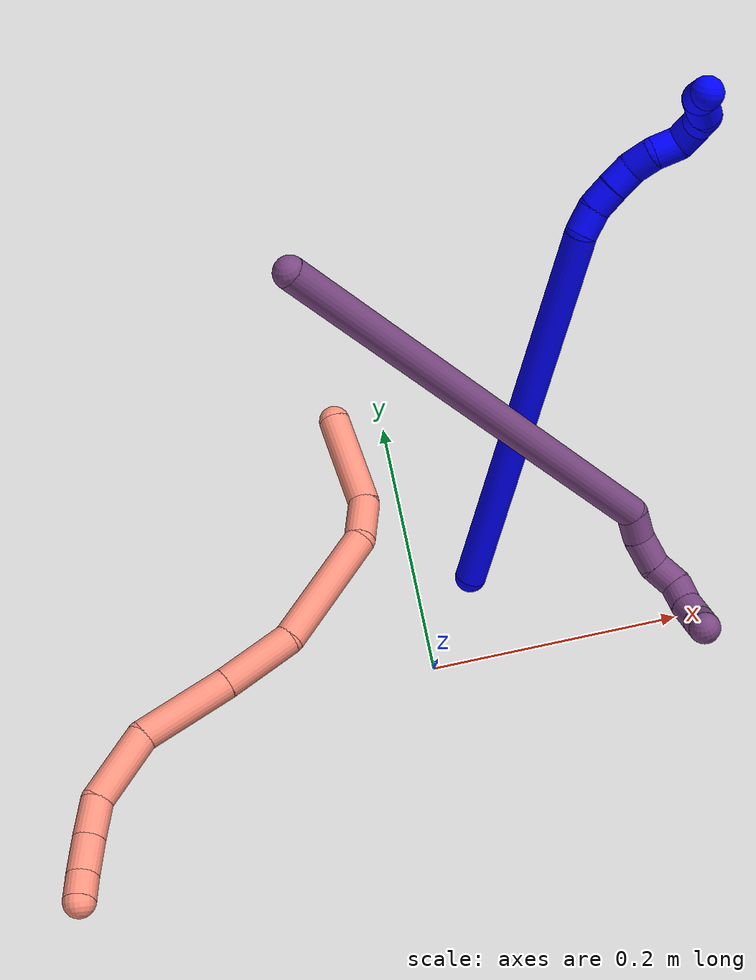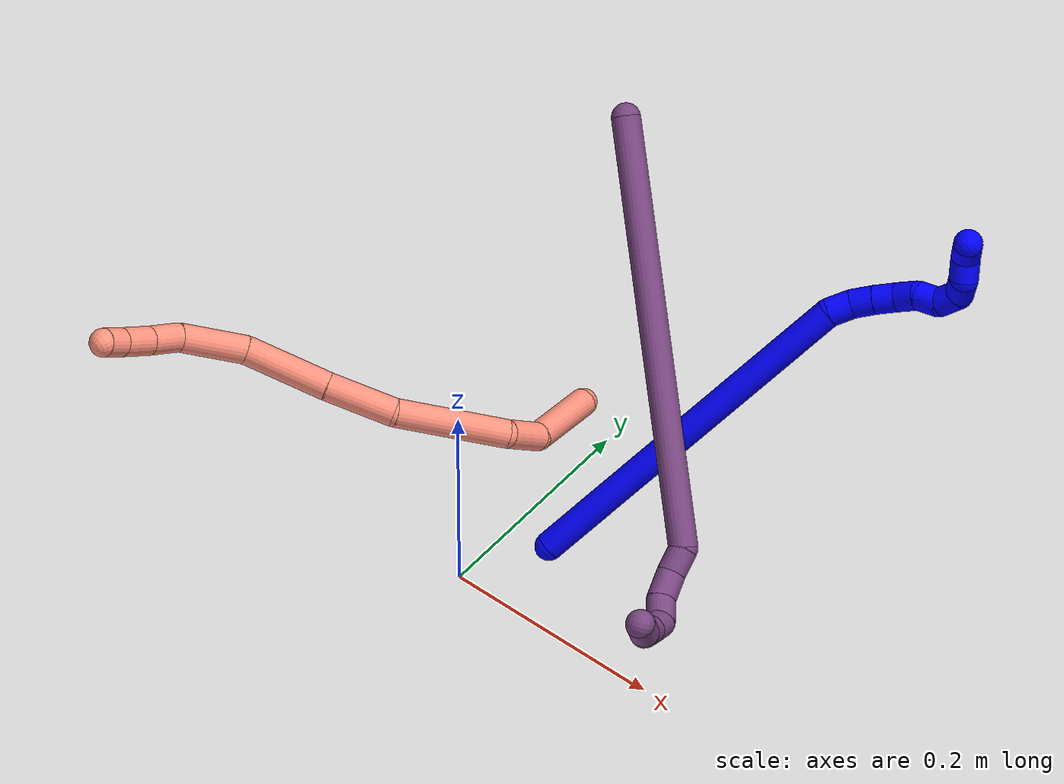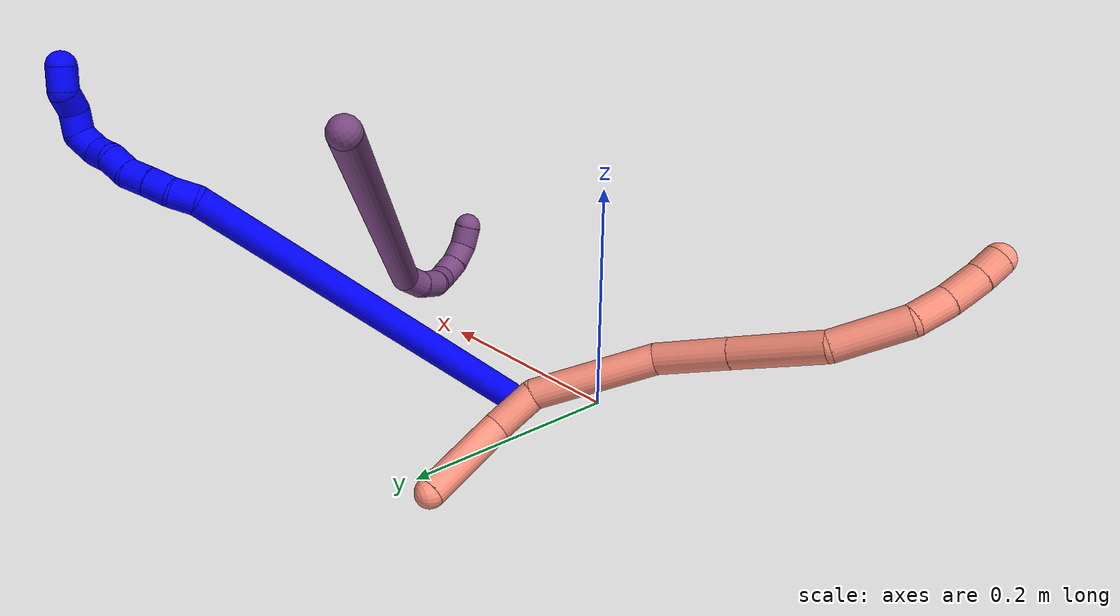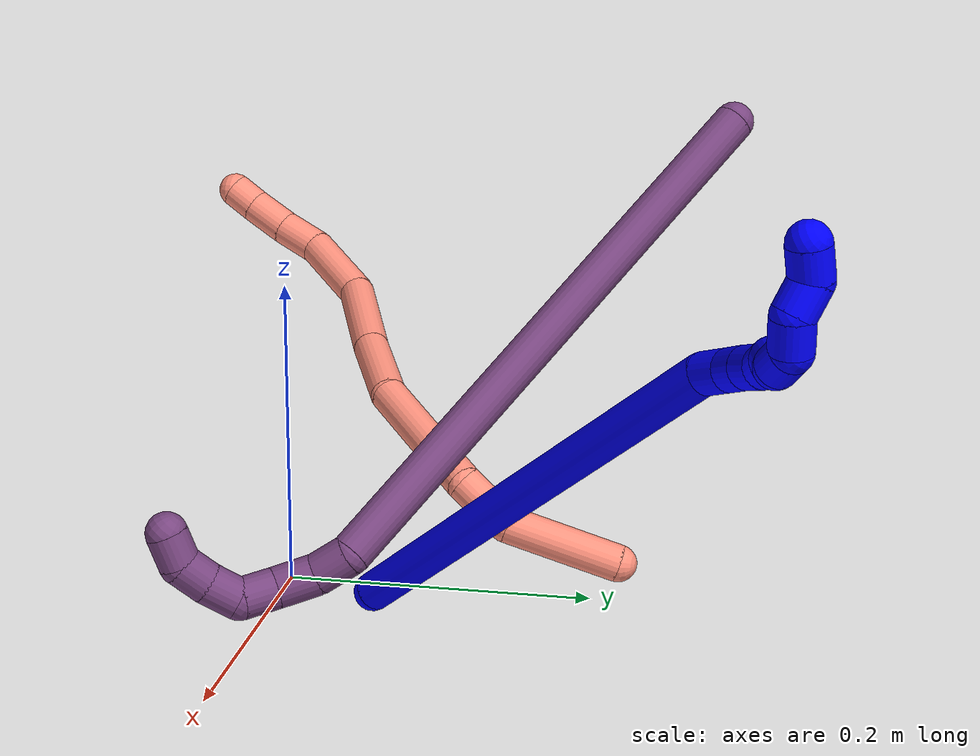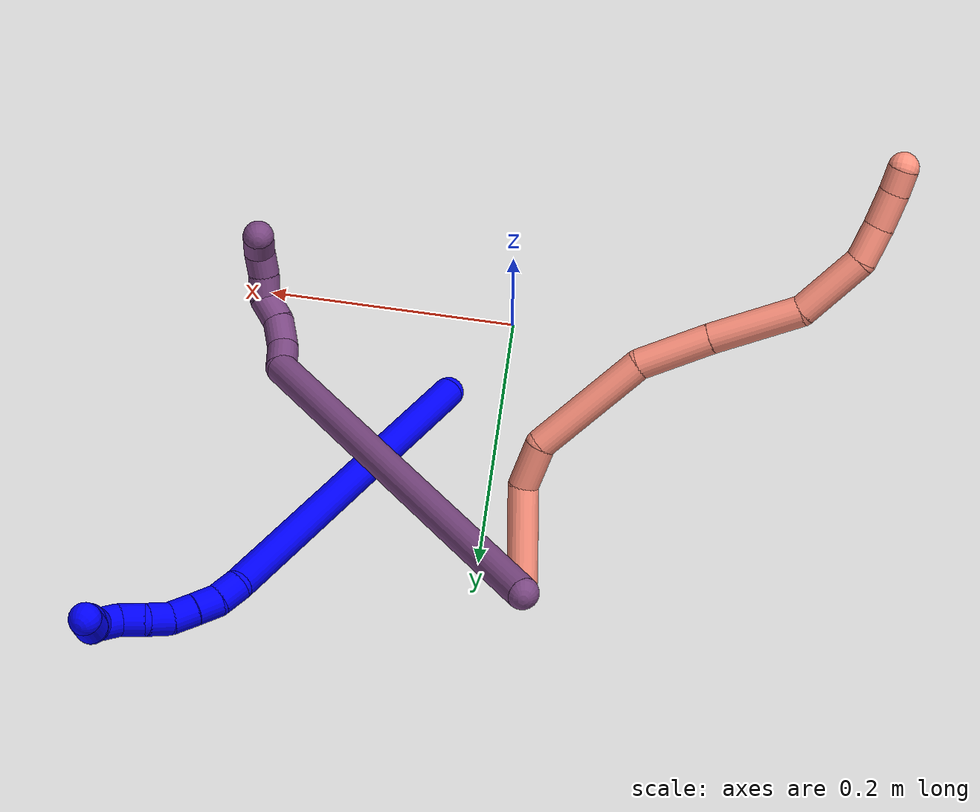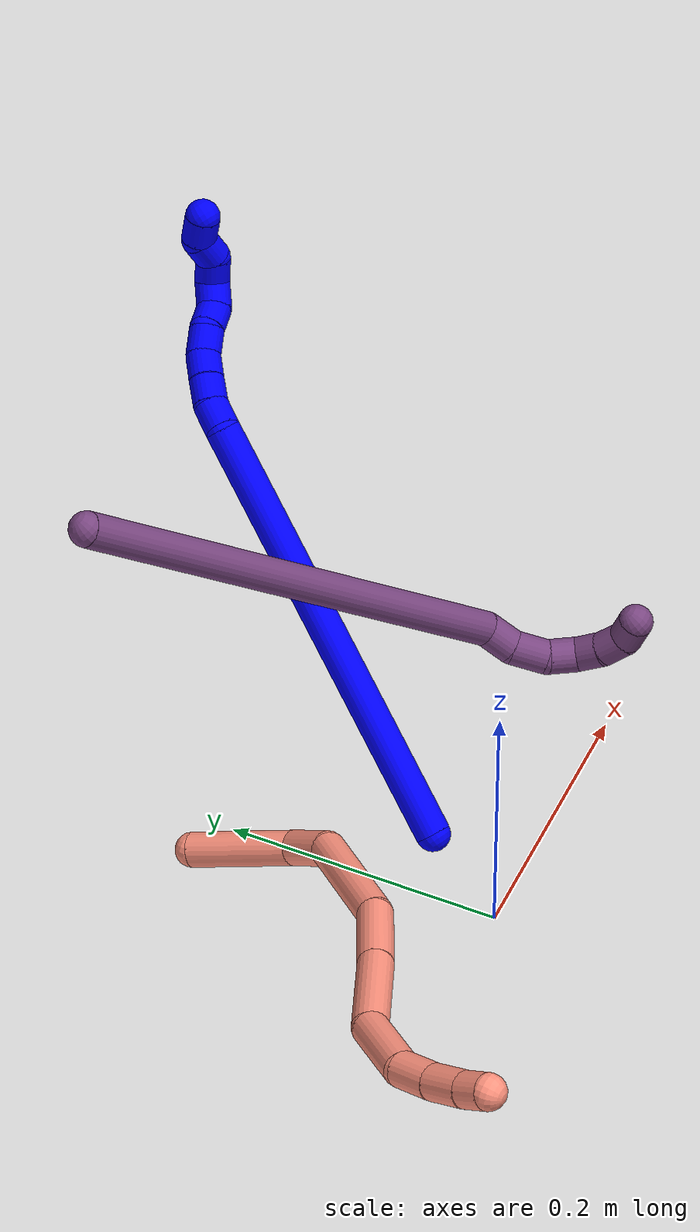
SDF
<sdf version="1.7">
 <world name="default">
  <model name="photoneo_s_sensor">
   <static>1</static>
   <pose>0 0 2 1.57079 1.57079 3.14159</pose>
   <link name="link">
    <inertial><mass>0.1</mass></inertial>
    <sensor name="sensor" type="depth">
     <update_rate>30</update_rate>
     <camera>
      <horizontal_fov>1.22</horizontal_fov>
      <image><width>1920</width><height>1200</height><format>B8G8R8</format></image>
      <clip><near>0.1</near><far>4</far></clip>
      <depth_camera><output>points</output></depth_camera>
     </camera>
     <plugin name="camera_plugin" filename="libgazebo_ros_depth_camera.so">
      <baseline>0.2</baseline>
      <alwaysOn>1</alwaysOn>
      <updateRate>0.0</updateRate>
      <cameraName>camera_ir</cameraName>
      <imageTopicName>/camera/color/image_raw</imageTopicName>
      <cameraInfoTopicName>/camera/color/camera_info</cameraInfoTopicName>
      <depthImageTopicName>/camera/depth/image_raw</depthImageTopicName>
      <depthImageCameraInfoTopicName>/camera/depth/camera_info</depthImageCameraInfoTopicName>
      <pointCloudTopicName>/camera/depth/points</pointCloudTopicName>
      <frameName>fr_optical</frameName>
      <pointCloudCutoff>0.1</pointCloudCutoff>
      <pointCloudCutoffMax>2.0</pointCloudCutoffMax>
      <distortionK1>0</distortionK1>
      <distortionK2>0</distortionK2>
      <distortionK3>0</distortionK3>
      <distortionT1>0</distortionT1>
      <distortionT2>0</distortionT2>
      <CxPrime>0</CxPrime>
      <Cx>0</Cx>
      <Cy>0</Cy>
      <focalLength>0</focalLength>
      <hackBaseline>0</hackBaseline>
     </plugin>
    </sensor>
   </link>
  </model>
  <model name="bin">
   <static>1</static>
   <link name="bottom">
    <collision name="collision-bottom">
     <pose>0 0 -0.01 0 -0 0</pose>
     <geometry><box><size>0.8 0.6 0.02</size></box></geometry>
     <surface>
      <friction><ode><mu>100</mu><mu2>100</mu2></ode></friction>
      <contact><collide_bitmask>65535</collide_bitmask></contact>
     </surface>
    </collision>
   </link>
   <link name="west_wall">
    <collision name="collision-west_wall">
     <pose>-0.41 0 0.1 0 -0 0</pose>
     <geometry><box><size>0.02 0.6 0.2</size></box></geometry>
     <surface>
      <friction><ode><mu>100</mu><mu2>100</mu2></ode></friction>
      <contact><collide_bitmask>65535</collide_bitmask></contact>
     </surface>
    </collision>
   </link>
   <link name="east_wall">
    <collision name="collision-east_wall">
     <pose>0.41 0 0.1 0 -0 0</pose>
     <geometry><box><size>0.02 0.6 0.2</size></box></geometry>
     <surface>
      <friction><ode><mu>100</mu><mu2>100</mu2></ode></friction>
      <contact><collide_bitmask>65535</collide_bitmask></contact>
     </surface>
    </collision>
   </link>
   <link name="south_wall">
    <collision name="collision-south_wall">
     <pose>0 -0.31 0.1 0 -0 0</pose>
     <geometry><box><size>0.8 0.02 0.2</size></box></geometry>
     <surface>
      <friction><ode><mu>100</mu><mu2>100</mu2></ode></friction>
      <contact><collide_bitmask>65535</collide_bitmask></contact>
     </surface>
    </collision>
   </link>
   <link name="north_wall">
    <collision name="collision-north_wall">
     <pose>0 0.31 0.1 0 -0 0</pose>
     <geometry><box><size>0.8 0.02 0.2</size></box></geometry>
     <surface>
      <friction><ode><mu>100</mu><mu2>100</mu2></ode></friction>
      <contact><collide_bitmask>65535</collide_bitmask></contact>
     </surface>
    </collision>
   </link>
  </model>
  <model name="1">
   <static>0</static>
   <link name="1">
    <collision name="collision-cylinder-e_1_1_4">
     <pose>0.011566 -0.008713 0.158798 0.054812 0.072597 0.001991</pose>
     <geometry><cylinder><radius>0.0125</radius><length>0.318913</length></cylinder></geometry>
     <surface>
      <friction><ode><mu>1.16</mu><mu2>1.16</mu2><slip1>0</slip1><slip2>0</slip2></ode></friction>
      <contact><ode><kp>1e+06</kp><kd>1</kd><max_vel>0</max_vel><min_depth>0.001</min_depth></ode></contact>
     </surface>
    </collision>
    <visual name="visual-cylinder-e_1_1_4">
     <pose>0.011566 -0.008713 0.158798 0.054812 0.072597 0.001991</pose>
     <geometry><cylinder><radius>0.0125</radius><length>0.318913</length></cylinder></geometry>
     <material><ambient>0 0 1 1</ambient></material>
    </visual>
    <collision name="collision-cylinder-e_2_4_5">
     <pose>0.027265 -0.016362 0.327233 -0.109955 0.402946 -0.022479</pose>
     <geometry><cylinder><radius>0.0125</radius><length>0.02108</length></cylinder></geometry>
     <surface>
      <friction><ode><mu>1.16</mu><mu2>1.16</mu2><slip1>0</slip1><slip2>0</slip2></ode></friction>
      <contact><ode><kp>1e+06</kp><kd>1</kd><max_vel>0</max_vel><min_depth>0.001</min_depth></ode></contact>
     </surface>
    </collision>
    <visual name="visual-cylinder-e_2_4_5">
     <pose>0.027265 -0.016362 0.327233 -0.109955 0.402946 -0.022479</pose>
     <geometry><cylinder><radius>0.0125</radius><length>0.02108</length></cylinder></geometry>
     <material><ambient>0 0 1 1</ambient></material>
    </visual>
    <collision name="collision-cylinder-e_3_5_6">
     <pose>0.036842 -0.016274 0.345201 0.116644 0.575623 0.034566</pose>
     <geometry><cylinder><radius>0.0125</radius><length>0.02</length></cylinder></geometry>
     <surface>
      <friction><ode><mu>1.16</mu><mu2>1.16</mu2><slip1>0</slip1><slip2>0</slip2></ode></friction>
      <contact><ode><kp>1e+06</kp><kd>1</kd><max_vel>0</max_vel><min_depth>0.001</min_depth></ode></contact>
     </surface>
    </collision>
    <visual name="visual-cylinder-e_3_5_6">
     <pose>0.036842 -0.016274 0.345201 0.116644 0.575623 0.034566</pose>
     <geometry><cylinder><radius>0.0125</radius><length>0.02</length></cylinder></geometry>
     <material><ambient>0 0 1 1</ambient></material>
    </visual>
    <collision name="collision-cylinder-e_4_6_7">
     <pose>0.048238 -0.018093 0.361524 0.105142 0.637641 0.034734</pose>
     <geometry><cylinder><radius>0.0125</radius><length>0.020001</length></cylinder></geometry>
     <surface>
      <friction><ode><mu>1.16</mu><mu2>1.16</mu2><slip1>0</slip1><slip2>0</slip2></ode></friction>
      <contact><ode><kp>1e+06</kp><kd>1</kd><max_vel>0</max_vel><min_depth>0.001</min_depth></ode></contact>
     </surface>
    </collision>
    <visual name="visual-cylinder-e_4_6_7">
     <pose>0.048238 -0.018093 0.361524 0.105142 0.637641 0.034734</pose>
     <geometry><cylinder><radius>0.0125</radius><length>0.020001</length></cylinder></geometry>
     <material><ambient>0 0 1 1</ambient></material>
    </visual>
    <collision name="collision-cylinder-e_5_7_8">
     <pose>0.059664 -0.022935 0.376872 0.497769 0.578918 0.151098</pose>
     <geometry><cylinder><radius>0.0125</radius><length>0.020006</length></cylinder></geometry>
     <surface>
      <friction><ode><mu>1.16</mu><mu2>1.16</mu2><slip1>0</slip1><slip2>0</slip2></ode></friction>
      <contact><ode><kp>1e+06</kp><kd>1</kd><max_vel>0</max_vel><min_depth>0.001</min_depth></ode></contact>
     </surface>
    </collision>
    <visual name="visual-cylinder-e_5_7_8">
     <pose>0.059664 -0.022935 0.376872 0.497769 0.578918 0.151098</pose>
     <geometry><cylinder><radius>0.0125</radius><length>0.020006</length></cylinder></geometry>
     <material><ambient>0 0 1 1</ambient></material>
    </visual>
    <collision name="collision-cylinder-e_6_8_9">
     <pose>0.073487 -0.029424 0.389135 0.469891 0.988172 0.256453</pose>
     <geometry><cylinder><radius>0.0125</radius><length>0.02</length></cylinder></geometry>
     <surface>
      <friction><ode><mu>1.16</mu><mu2>1.16</mu2><slip1>0</slip1><slip2>0</slip2></ode></friction>
      <contact><ode><kp>1e+06</kp><kd>1</kd><max_vel>0</max_vel><min_depth>0.001</min_depth></ode></contact>
     </surface>
    </collision>
    <visual name="visual-cylinder-e_6_8_9">
     <pose>0.073487 -0.029424 0.389135 0.469891 0.988172 0.256453</pose>
     <geometry><cylinder><radius>0.0125</radius><length>0.02</length></cylinder></geometry>
     <material><ambient>0 0 1 1</ambient></material>
    </visual>
    <collision name="collision-cylinder-e_7_9_10">
     <pose>0.085199 -0.035337 0.402815 0.371833 0.342782 0.065089</pose>
     <geometry><cylinder><radius>0.0125</radius><length>0.02</length></cylinder></geometry>
     <surface>
      <friction><ode><mu>1.16</mu><mu2>1.16</mu2><slip1>0</slip1><slip2>0</slip2></ode></friction>
      <contact><ode><kp>1e+06</kp><kd>1</kd><max_vel>0</max_vel><min_depth>0.001</min_depth></ode></contact>
     </surface>
    </collision>
    <visual name="visual-cylinder-e_7_9_10">
     <pose>0.085199 -0.035337 0.402815 0.371833 0.342782 0.065089</pose>
     <geometry><cylinder><radius>0.0125</radius><length>0.02</length></cylinder></geometry>
     <material><ambient>0 0 1 1</ambient></material>
    </visual>
    <collision name="collision-cylinder-e_8_10_11">
     <pose>0.085767 -0.045641 0.418286 0.799153 -0.283047 -0.120189</pose>
     <geometry><cylinder><radius>0.0125</radius><length>0.02</length></cylinder></geometry>
     <surface>
      <friction><ode><mu>1.16</mu><mu2>1.16</mu2><slip1>0</slip1><slip2>0</slip2></ode></friction>
      <contact><ode><kp>1e+06</kp><kd>1</kd><max_vel>0</max_vel><min_depth>0.001</min_depth></ode></contact>
     </surface>
    </collision>
    <visual name="visual-cylinder-e_8_10_11">
     <pose>0.085767 -0.045641 0.418286 0.799153 -0.283047 -0.120189</pose>
     <geometry><cylinder><radius>0.0125</radius><length>0.02</length></cylinder></geometry>
     <material><ambient>0 0 1 1</ambient></material>
    </visual>
    <collision name="collision-cylinder-e_9_11_12">
     <pose>0.076851 -0.054599 0.43261 0.265603 -0.659055 -0.09131</pose>
     <geometry><cylinder><radius>0.0125</radius><length>0.02</length></cylinder></geometry>
     <surface>
      <friction><ode><mu>1.16</mu><mu2>1.16</mu2><slip1>0</slip1><slip2>0</slip2></ode></friction>
      <contact><ode><kp>1e+06</kp><kd>1</kd><max_vel>0</max_vel><min_depth>0.001</min_depth></ode></contact>
     </surface>
    </collision>
    <visual name="visual-cylinder-e_9_11_12">
     <pose>0.076851 -0.054599 0.43261 0.265603 -0.659055 -0.09131</pose>
     <geometry><cylinder><radius>0.0125</radius><length>0.02</length></cylinder></geometry>
     <material><ambient>0 0 1 1</ambient></material>
    </visual>
    <collision name="collision-cylinder-e_10_12_2">
     <pose>0.067768 -0.064323 0.44596 0.928544 -0.300399 -0.151286</pose>
     <geometry><cylinder><radius>0.0125</radius><length>0.02</length></cylinder></geometry>
     <surface>
      <friction><ode><mu>1.16</mu><mu2>1.16</mu2><slip1>0</slip1><slip2>0</slip2></ode></friction>
      <contact><ode><kp>1e+06</kp><kd>1</kd><max_vel>0</max_vel><min_depth>0.001</min_depth></ode></contact>
     </surface>
    </collision>
    <visual name="visual-cylinder-e_10_12_2">
     <pose>0.067768 -0.064323 0.44596 0.928544 -0.300399 -0.151286</pose>
     <geometry><cylinder><radius>0.0125</radius><length>0.02</length></cylinder></geometry>
     <material><ambient>0 0 1 1</ambient></material>
    </visual>
    <collision name="collision-sphere-2">
     <pose>0.064809 -0.071972 0.451682 0 -0 0</pose>
     <geometry><sphere><radius>0.0125</radius></sphere></geometry>
     <surface>
      <friction><ode><mu>1.16</mu><mu2>1.16</mu2><slip1>0</slip1><slip2>0</slip2></ode></friction>
      <contact><ode><kp>1e+06</kp><kd>1</kd><max_vel>0</max_vel><min_depth>0.001</min_depth></ode></contact>
     </surface>
    </collision>
    <visual name="visual-sphere-2">
     <pose>0.064809 -0.071972 0.451682 0 -0 0</pose>
     <geometry><sphere><radius>0.0125</radius></sphere></geometry>
     <material><ambient>0 0 1 1</ambient></material>
    </visual>
    <collision name="collision-sphere-12">
     <pose>0.070727 -0.056674 0.440238 0 -0 0</pose>
     <geometry><sphere><radius>0.0125</radius></sphere></geometry>
     <surface>
      <friction><ode><mu>1.16</mu><mu2>1.16</mu2><slip1>0</slip1><slip2>0</slip2></ode></friction>
      <contact><ode><kp>1e+06</kp><kd>1</kd><max_vel>0</max_vel><min_depth>0.001</min_depth></ode></contact>
     </surface>
    </collision>
    <visual name="visual-sphere-12">
     <pose>0.070727 -0.056674 0.440238 0 -0 0</pose>
     <geometry><sphere><radius>0.0125</radius></sphere></geometry>
     <material><ambient>0 0 1 1</ambient></material>
    </visual>
    <collision name="collision-sphere-11">
     <pose>0.082974 -0.052524 0.424981 0 -0 0</pose>
     <geometry><sphere><radius>0.0125</radius></sphere></geometry>
     <surface>
      <friction><ode><mu>1.16</mu><mu2>1.16</mu2><slip1>0</slip1><slip2>0</slip2></ode></friction>
      <contact><ode><kp>1e+06</kp><kd>1</kd><max_vel>0</max_vel><min_depth>0.001</min_depth></ode></contact>
     </surface>
    </collision>
    <visual name="visual-sphere-11">
     <pose>0.082974 -0.052524 0.424981 0 -0 0</pose>
     <geometry><sphere><radius>0.0125</radius></sphere></geometry>
     <material><ambient>0 0 1 1</ambient></material>
    </visual>
    <collision name="collision-sphere-10">
     <pose>0.08856 -0.038759 0.41159 0 -0 0</pose>
     <geometry><sphere><radius>0.0125</radius></sphere></geometry>
     <surface>
      <friction><ode><mu>1.16</mu><mu2>1.16</mu2><slip1>0</slip1><slip2>0</slip2></ode></friction>
      <contact><ode><kp>1e+06</kp><kd>1</kd><max_vel>0</max_vel><min_depth>0.001</min_depth></ode></contact>
     </surface>
    </collision>
    <visual name="visual-sphere-10">
     <pose>0.08856 -0.038759 0.41159 0 -0 0</pose>
     <geometry><sphere><radius>0.0125</radius></sphere></geometry>
     <material><ambient>0 0 1 1</ambient></material>
    </visual>
    <collision name="collision-sphere-9">
     <pose>0.081838 -0.031915 0.39404 0 -0 0</pose>
     <geometry><sphere><radius>0.0125</radius></sphere></geometry>
     <surface>
      <friction><ode><mu>1.16</mu><mu2>1.16</mu2><slip1>0</slip1><slip2>0</slip2></ode></friction>
      <contact><ode><kp>1e+06</kp><kd>1</kd><max_vel>0</max_vel><min_depth>0.001</min_depth></ode></contact>
     </surface>
    </collision>
    <visual name="visual-sphere-9">
     <pose>0.081838 -0.031915 0.39404 0 -0 0</pose>
     <geometry><sphere><radius>0.0125</radius></sphere></geometry>
     <material><ambient>0 0 1 1</ambient></material>
    </visual>
    <collision name="collision-sphere-4">
     <pose>0.023132 -0.017425 0.317595 0 -0 0</pose>
     <geometry><sphere><radius>0.0125</radius></sphere></geometry>
     <surface>
      <friction><ode><mu>1.16</mu><mu2>1.16</mu2><slip1>0</slip1><slip2>0</slip2></ode></friction>
      <contact><ode><kp>1e+06</kp><kd>1</kd><max_vel>0</max_vel><min_depth>0.001</min_depth></ode></contact>
     </surface>
    </collision>
    <visual name="visual-sphere-4">
     <pose>0.023132 -0.017425 0.317595 0 -0 0</pose>
     <geometry><sphere><radius>0.0125</radius></sphere></geometry>
     <material><ambient>0 0 1 1</ambient></material>
    </visual>
    <collision name="collision-sphere-1">
     <geometry><sphere><radius>0.0125</radius></sphere></geometry>
     <surface>
      <friction><ode><mu>1.16</mu><mu2>1.16</mu2><slip1>0</slip1><slip2>0</slip2></ode></friction>
      <contact><ode><kp>1e+06</kp><kd>1</kd><max_vel>0</max_vel><min_depth>0.001</min_depth></ode></contact>
     </surface>
    </collision>
    <visual name="visual-sphere-1">
     <geometry><sphere><radius>0.0125</radius></sphere></geometry>
     <material><ambient>0 0 1 1</ambient></material>
    </visual>
    <collision name="collision-sphere-8">
     <pose>0.065137 -0.026932 0.384229 0 -0 0</pose>
     <geometry><sphere><radius>0.0125</radius></sphere></geometry>
     <surface>
      <friction><ode><mu>1.16</mu><mu2>1.16</mu2><slip1>0</slip1><slip2>0</slip2></ode></friction>
      <contact><ode><kp>1e+06</kp><kd>1</kd><max_vel>0</max_vel><min_depth>0.001</min_depth></ode></contact>
     </surface>
    </collision>
    <visual name="visual-sphere-8">
     <pose>0.065137 -0.026932 0.384229 0 -0 0</pose>
     <geometry><sphere><radius>0.0125</radius></sphere></geometry>
     <material><ambient>0 0 1 1</ambient></material>
    </visual>
    <collision name="collision-sphere-5">
     <pose>0.031398 -0.015298 0.33687 0 -0 0</pose>
     <geometry><sphere><radius>0.0125</radius></sphere></geometry>
     <surface>
      <friction><ode><mu>1.16</mu><mu2>1.16</mu2><slip1>0</slip1><slip2>0</slip2></ode></friction>
      <contact><ode><kp>1e+06</kp><kd>1</kd><max_vel>0</max_vel><min_depth>0.001</min_depth></ode></contact>
     </surface>
    </collision>
    <visual name="visual-sphere-5">
     <pose>0.031398 -0.015298 0.33687 0 -0 0</pose>
     <geometry><sphere><radius>0.0125</radius></sphere></geometry>
     <material><ambient>0 0 1 1</ambient></material>
    </visual>
    <collision name="collision-sphere-6">
     <pose>0.042285 -0.01725 0.353533 0 -0 0</pose>
     <geometry><sphere><radius>0.0125</radius></sphere></geometry>
     <surface>
      <friction><ode><mu>1.16</mu><mu2>1.16</mu2><slip1>0</slip1><slip2>0</slip2></ode></friction>
      <contact><ode><kp>1e+06</kp><kd>1</kd><max_vel>0</max_vel><min_depth>0.001</min_depth></ode></contact>
     </surface>
    </collision>
    <visual name="visual-sphere-6">
     <pose>0.042285 -0.01725 0.353533 0 -0 0</pose>
     <geometry><sphere><radius>0.0125</radius></sphere></geometry>
     <material><ambient>0 0 1 1</ambient></material>
    </visual>
    <collision name="collision-sphere-7">
     <pose>0.054192 -0.018937 0.369515 0 -0 0</pose>
     <geometry><sphere><radius>0.0125</radius></sphere></geometry>
     <surface>
      <friction><ode><mu>1.16</mu><mu2>1.16</mu2><slip1>0</slip1><slip2>0</slip2></ode></friction>
      <contact><ode><kp>1e+06</kp><kd>1</kd><max_vel>0</max_vel><min_depth>0.001</min_depth></ode></contact>
     </surface>
    </collision>
    <visual name="visual-sphere-7">
     <pose>0.054192 -0.018937 0.369515 0 -0 0</pose>
     <geometry><sphere><radius>0.0125</radius></sphere></geometry>
     <material><ambient>0 0 1 1</ambient></material>
    </visual>
    <inertial>
     <pose>0.02988 -0.017712 0.241983 0 -0 0</pose>
     <mass>0.5</mass>
     <inertia>
      <ixx>0.00273</ixx>
      <ixy>0</ixy>
      <ixz>0</ixz>
      <iyy>0.002723</iyy>
      <iyz>0</iyz>
      <izz>-1.2e-05</izz>
     </inertia>
    </inertial>
   </link>
   <pose>0.044057 0.066167 0.0123 -0.820241 0.454863 -0.018925</pose>
  </model>
  <model name="16">
   <static>0</static>
   <link name="16">
    <collision name="collision-cylinder-e_1_1_4">
     <pose>-0.010625 -0.010398 0.036524 0.277337 -0.27282 -0.038309</pose>
     <geometry><cylinder><radius>0.0125</radius><length>0.078868</length></cylinder></geometry>
     <surface>
      <friction><ode><mu>1.16</mu><mu2>1.16</mu2><slip1>0</slip1><slip2>0</slip2></ode></friction>
      <contact><ode><kp>1e+06</kp><kd>1</kd><max_vel>0</max_vel><min_depth>0.001</min_depth></ode></contact>
     </surface>
    </collision>
    <visual name="visual-cylinder-e_1_1_4">
     <pose>-0.010625 -0.010398 0.036524 0.277337 -0.27282 -0.038309</pose>
     <geometry><cylinder><radius>0.0125</radius><length>0.078868</length></cylinder></geometry>
     <material><ambient>1 0.576471 0.494118 1</ambient></material>
    </visual>
    <collision name="collision-cylinder-e_2_4_5">
     <pose>-0.019835 -0.032149 0.089016 0.618146 0.072123 0.023038</pose>
     <geometry><cylinder><radius>0.0125</radius><length>0.039287</length></cylinder></geometry>
     <surface>
      <friction><ode><mu>1.16</mu><mu2>1.16</mu2><slip1>0</slip1><slip2>0</slip2></ode></friction>
      <contact><ode><kp>1e+06</kp><kd>1</kd><max_vel>0</max_vel><min_depth>0.001</min_depth></ode></contact>
     </surface>
    </collision>
    <visual name="visual-cylinder-e_2_4_5">
     <pose>-0.019835 -0.032149 0.089016 0.618146 0.072123 0.023038</pose>
     <geometry><cylinder><radius>0.0125</radius><length>0.039287</length></cylinder></geometry>
     <material><ambient>1 0.576471 0.494118 1</ambient></material>
    </visual>
    <collision name="collision-cylinder-e_3_5_6">
     <pose>0.009342 -0.064707 0.14273 0.511807 0.570192 0.153063</pose>
     <geometry><cylinder><radius>0.0125</radius><length>0.102861</length></cylinder></geometry>
     <surface>
      <friction><ode><mu>1.16</mu><mu2>1.16</mu2><slip1>0</slip1><slip2>0</slip2></ode></friction>
      <contact><ode><kp>1e+06</kp><kd>1</kd><max_vel>0</max_vel><min_depth>0.001</min_depth></ode></contact>
     </surface>
    </collision>
    <visual name="visual-cylinder-e_3_5_6">
     <pose>0.009342 -0.064707 0.14273 0.511807 0.570192 0.153063</pose>
     <geometry><cylinder><radius>0.0125</radius><length>0.102861</length></cylinder></geometry>
     <material><ambient>1 0.576471 0.494118 1</ambient></material>
    </visual>
    <collision name="collision-cylinder-e_4_6_7">
     <pose>0.060939 -0.097437 0.195995 0.638821 0.889377 0.312633</pose>
     <geometry><cylinder><radius>0.0125</radius><length>0.061377</length></cylinder></geometry>
     <surface>
      <friction><ode><mu>1.16</mu><mu2>1.16</mu2><slip1>0</slip1><slip2>0</slip2></ode></friction>
      <contact><ode><kp>1e+06</kp><kd>1</kd><max_vel>0</max_vel><min_depth>0.001</min_depth></ode></contact>
     </surface>
    </collision>
    <visual name="visual-cylinder-e_4_6_7">
     <pose>0.060939 -0.097437 0.195995 0.638821 0.889377 0.312633</pose>
     <geometry><cylinder><radius>0.0125</radius><length>0.061377</length></cylinder></geometry>
     <material><ambient>1 0.576471 0.494118 1</ambient></material>
    </visual>
    <collision name="collision-cylinder-e_5_7_8">
     <pose>0.114955 -0.123893 0.228873 0.710307 0.921774 0.364242</pose>
     <geometry><cylinder><radius>0.0125</radius><length>0.075766</length></cylinder></geometry>
     <surface>
      <friction><ode><mu>1.16</mu><mu2>1.16</mu2><slip1>0</slip1><slip2>0</slip2></ode></friction>
      <contact><ode><kp>1e+06</kp><kd>1</kd><max_vel>0</max_vel><min_depth>0.001</min_depth></ode></contact>
     </surface>
    </collision>
    <visual name="visual-cylinder-e_5_7_8">
     <pose>0.114955 -0.123893 0.228873 0.710307 0.921774 0.364242</pose>
     <geometry><cylinder><radius>0.0125</radius><length>0.075766</length></cylinder></geometry>
     <material><ambient>1 0.576471 0.494118 1</ambient></material>
    </visual>
    <collision name="collision-cylinder-e_6_8_9">
     <pose>0.160814 -0.151672 0.268745 0.518626 0.543994 0.147712</pose>
     <geometry><cylinder><radius>0.0125</radius><length>0.060587</length></cylinder></geometry>
     <surface>
      <friction><ode><mu>1.16</mu><mu2>1.16</mu2><slip1>0</slip1><slip2>0</slip2></ode></friction>
      <contact><ode><kp>1e+06</kp><kd>1</kd><max_vel>0</max_vel><min_depth>0.001</min_depth></ode></contact>
     </surface>
    </collision>
    <visual name="visual-cylinder-e_6_8_9">
     <pose>0.160814 -0.151672 0.268745 0.518626 0.543994 0.147712</pose>
     <geometry><cylinder><radius>0.0125</radius><length>0.060587</length></cylinder></geometry>
     <material><ambient>1 0.576471 0.494118 1</ambient></material>
    </visual>
    <collision name="collision-cylinder-e_7_9_10">
     <pose>0.179129 -0.170195 0.305236 0.385647 0.173001 0.03386</pose>
     <geometry><cylinder><radius>0.0125</radius><length>0.030632</length></cylinder></geometry>
     <surface>
      <friction><ode><mu>1.16</mu><mu2>1.16</mu2><slip1>0</slip1><slip2>0</slip2></ode></friction>
      <contact><ode><kp>1e+06</kp><kd>1</kd><max_vel>0</max_vel><min_depth>0.001</min_depth></ode></contact>
     </surface>
    </collision>
    <visual name="visual-cylinder-e_7_9_10">
     <pose>0.179129 -0.170195 0.305236 0.385647 0.173001 0.03386</pose>
     <geometry><cylinder><radius>0.0125</radius><length>0.030632</length></cylinder></geometry>
     <material><ambient>1 0.576471 0.494118 1</ambient></material>
    </visual>
    <collision name="collision-cylinder-e_8_10_11">
     <pose>0.183266 -0.18277 0.332504 0.478881 0.09986 0.024397</pose>
     <geometry><cylinder><radius>0.0125</radius><length>0.030095</length></cylinder></geometry>
     <surface>
      <friction><ode><mu>1.16</mu><mu2>1.16</mu2><slip1>0</slip1><slip2>0</slip2></ode></friction>
      <contact><ode><kp>1e+06</kp><kd>1</kd><max_vel>0</max_vel><min_depth>0.001</min_depth></ode></contact>
     </surface>
    </collision>
    <visual name="visual-cylinder-e_8_10_11">
     <pose>0.183266 -0.18277 0.332504 0.478881 0.09986 0.024397</pose>
     <geometry><cylinder><radius>0.0125</radius><length>0.030095</length></cylinder></geometry>
     <material><ambient>1 0.576471 0.494118 1</ambient></material>
    </visual>
    <collision name="collision-cylinder-e_9_11_2">
     <pose>0.185097 -0.194964 0.354577 0.542404 0.032241 0.008965</pose>
     <geometry><cylinder><radius>0.0125</radius><length>0.020525</length></cylinder></geometry>
     <surface>
      <friction><ode><mu>1.16</mu><mu2>1.16</mu2><slip1>0</slip1><slip2>0</slip2></ode></friction>
      <contact><ode><kp>1e+06</kp><kd>1</kd><max_vel>0</max_vel><min_depth>0.001</min_depth></ode></contact>
     </surface>
    </collision>
    <visual name="visual-cylinder-e_9_11_2">
     <pose>0.185097 -0.194964 0.354577 0.542404 0.032241 0.008965</pose>
     <geometry><cylinder><radius>0.0125</radius><length>0.020525</length></cylinder></geometry>
     <material><ambient>1 0.576471 0.494118 1</ambient></material>
    </visual>
    <collision name="collision-sphere-2">
     <pose>0.185428 -0.200259 0.363362 0 -0 0</pose>
     <geometry><sphere><radius>0.0125</radius></sphere></geometry>
     <surface>
      <friction><ode><mu>1.16</mu><mu2>1.16</mu2><slip1>0</slip1><slip2>0</slip2></ode></friction>
      <contact><ode><kp>1e+06</kp><kd>1</kd><max_vel>0</max_vel><min_depth>0.001</min_depth></ode></contact>
     </surface>
    </collision>
    <visual name="visual-sphere-2">
     <pose>0.185428 -0.200259 0.363362 0 -0 0</pose>
     <geometry><sphere><radius>0.0125</radius></sphere></geometry>
     <material><ambient>1 0.576471 0.494118 1</ambient></material>
    </visual>
    <collision name="collision-sphere-11">
     <pose>0.184766 -0.189669 0.345792 0 -0 0</pose>
     <geometry><sphere><radius>0.0125</radius></sphere></geometry>
     <surface>
      <friction><ode><mu>1.16</mu><mu2>1.16</mu2><slip1>0</slip1><slip2>0</slip2></ode></friction>
      <contact><ode><kp>1e+06</kp><kd>1</kd><max_vel>0</max_vel><min_depth>0.001</min_depth></ode></contact>
     </surface>
    </collision>
    <visual name="visual-sphere-11">
     <pose>0.184766 -0.189669 0.345792 0 -0 0</pose>
     <geometry><sphere><radius>0.0125</radius></sphere></geometry>
     <material><ambient>1 0.576471 0.494118 1</ambient></material>
    </visual>
    <collision name="collision-sphere-10">
     <pose>0.181766 -0.175871 0.319215 0 -0 0</pose>
     <geometry><sphere><radius>0.0125</radius></sphere></geometry>
     <surface>
      <friction><ode><mu>1.16</mu><mu2>1.16</mu2><slip1>0</slip1><slip2>0</slip2></ode></friction>
      <contact><ode><kp>1e+06</kp><kd>1</kd><max_vel>0</max_vel><min_depth>0.001</min_depth></ode></contact>
     </surface>
    </collision>
    <visual name="visual-sphere-10">
     <pose>0.181766 -0.175871 0.319215 0 -0 0</pose>
     <geometry><sphere><radius>0.0125</radius></sphere></geometry>
     <material><ambient>1 0.576471 0.494118 1</ambient></material>
    </visual>
    <collision name="collision-sphere-9">
     <pose>0.176493 -0.16452 0.291257 0 -0 0</pose>
     <geometry><sphere><radius>0.0125</radius></sphere></geometry>
     <surface>
      <friction><ode><mu>1.16</mu><mu2>1.16</mu2><slip1>0</slip1><slip2>0</slip2></ode></friction>
      <contact><ode><kp>1e+06</kp><kd>1</kd><max_vel>0</max_vel><min_depth>0.001</min_depth></ode></contact>
     </surface>
    </collision>
    <visual name="visual-sphere-9">
     <pose>0.176493 -0.16452 0.291257 0 -0 0</pose>
     <geometry><sphere><radius>0.0125</radius></sphere></geometry>
     <material><ambient>1 0.576471 0.494118 1</ambient></material>
    </visual>
    <collision name="collision-sphere-4">
     <pose>-0.021251 -0.020795 0.073049 0 -0 0</pose>
     <geometry><sphere><radius>0.0125</radius></sphere></geometry>
     <surface>
      <friction><ode><mu>1.16</mu><mu2>1.16</mu2><slip1>0</slip1><slip2>0</slip2></ode></friction>
      <contact><ode><kp>1e+06</kp><kd>1</kd><max_vel>0</max_vel><min_depth>0.001</min_depth></ode></contact>
     </surface>
    </collision>
    <visual name="visual-sphere-4">
     <pose>-0.021251 -0.020795 0.073049 0 -0 0</pose>
     <geometry><sphere><radius>0.0125</radius></sphere></geometry>
     <material><ambient>1 0.576471 0.494118 1</ambient></material>
    </visual>
    <collision name="collision-sphere-1">
     <geometry><sphere><radius>0.0125</radius></sphere></geometry>
     <surface>
      <friction><ode><mu>1.16</mu><mu2>1.16</mu2><slip1>0</slip1><slip2>0</slip2></ode></friction>
      <contact><ode><kp>1e+06</kp><kd>1</kd><max_vel>0</max_vel><min_depth>0.001</min_depth></ode></contact>
     </surface>
    </collision>
    <visual name="visual-sphere-1">
     <geometry><sphere><radius>0.0125</radius></sphere></geometry>
     <material><ambient>1 0.576471 0.494118 1</ambient></material>
    </visual>
    <collision name="collision-sphere-8">
     <pose>0.145135 -0.138823 0.246232 0 -0 0</pose>
     <geometry><sphere><radius>0.0125</radius></sphere></geometry>
     <surface>
      <friction><ode><mu>1.16</mu><mu2>1.16</mu2><slip1>0</slip1><slip2>0</slip2></ode></friction>
      <contact><ode><kp>1e+06</kp><kd>1</kd><max_vel>0</max_vel><min_depth>0.001</min_depth></ode></contact>
     </surface>
    </collision>
    <visual name="visual-sphere-8">
     <pose>0.145135 -0.138823 0.246232 0 -0 0</pose>
     <geometry><sphere><radius>0.0125</radius></sphere></geometry>
     <material><ambient>1 0.576471 0.494118 1</ambient></material>
    </visual>
    <collision name="collision-sphere-5">
     <pose>-0.01842 -0.043504 0.104983 0 -0 0</pose>
     <geometry><sphere><radius>0.0125</radius></sphere></geometry>
     <surface>
      <friction><ode><mu>1.16</mu><mu2>1.16</mu2><slip1>0</slip1><slip2>0</slip2></ode></friction>
      <contact><ode><kp>1e+06</kp><kd>1</kd><max_vel>0</max_vel><min_depth>0.001</min_depth></ode></contact>
     </surface>
    </collision>
    <visual name="visual-sphere-5">
     <pose>-0.01842 -0.043504 0.104983 0 -0 0</pose>
     <geometry><sphere><radius>0.0125</radius></sphere></geometry>
     <material><ambient>1 0.576471 0.494118 1</ambient></material>
    </visual>
    <collision name="collision-sphere-6">
     <pose>0.037104 -0.085911 0.180476 0 -0 0</pose>
     <geometry><sphere><radius>0.0125</radius></sphere></geometry>
     <surface>
      <friction><ode><mu>1.16</mu><mu2>1.16</mu2><slip1>0</slip1><slip2>0</slip2></ode></friction>
      <contact><ode><kp>1e+06</kp><kd>1</kd><max_vel>0</max_vel><min_depth>0.001</min_depth></ode></contact>
     </surface>
    </collision>
    <visual name="visual-sphere-6">
     <pose>0.037104 -0.085911 0.180476 0 -0 0</pose>
     <geometry><sphere><radius>0.0125</radius></sphere></geometry>
     <material><ambient>1 0.576471 0.494118 1</ambient></material>
    </visual>
    <collision name="collision-sphere-7">
     <pose>0.084774 -0.108962 0.211513 0 -0 0</pose>
     <geometry><sphere><radius>0.0125</radius></sphere></geometry>
     <surface>
      <friction><ode><mu>1.16</mu><mu2>1.16</mu2><slip1>0</slip1><slip2>0</slip2></ode></friction>
      <contact><ode><kp>1e+06</kp><kd>1</kd><max_vel>0</max_vel><min_depth>0.001</min_depth></ode></contact>
     </surface>
    </collision>
    <visual name="visual-sphere-7">
     <pose>0.084774 -0.108962 0.211513 0 -0 0</pose>
     <geometry><sphere><radius>0.0125</radius></sphere></geometry>
     <material><ambient>1 0.576471 0.494118 1</ambient></material>
    </visual>
    <inertial>
     <pose>0.072677 -0.096023 0.186693 0 -0 0</pose>
     <mass>0.5</mass>
     <inertia><ixx>0.00023</ixx><ixy>0</ixy><ixz>0</ixz><iyy>0.000225</iyy><iyz>0</iyz><izz>1.9e-05</izz></inertia>
    </inertial>
   </link>
   <pose>-0.037547 0.213762 0.011315 -1.53563 0.145598 3.03162</pose>
  </model>
  <model name="20">
   <static>0</static>
   <link name="20">
    <collision name="collision-cylinder-e_1_1_4">
     <pose>0.068722 -0.057928 -0.160302 2.79482 0.383249 1.6729</pose>
     <geometry><cylinder><radius>0.0125</radius><length>0.36756</length></cylinder></geometry>
     <surface>
      <friction><ode><mu>1.16</mu><mu2>1.16</mu2><slip1>0</slip1><slip2>0</slip2></ode></friction>
      <contact><ode><kp>1e+06</kp><kd>1</kd><max_vel>0</max_vel><min_depth>0.001</min_depth></ode></contact>
     </surface>
    </collision>
    <visual name="visual-cylinder-e_1_1_4">
     <pose>0.068722 -0.057928 -0.160302 2.79482 0.383249 1.6729</pose>
     <geometry><cylinder><radius>0.0125</radius><length>0.36756</length></cylinder></geometry>
     <material><ambient>0.478431 0.278431 0.509804 1</ambient></material>
    </visual>
    <collision name="collision-cylinder-e_2_4_5">
     <pose>0.135118 -0.118825 -0.331631 2.87859 -0.200895 -1.30227</pose>
     <geometry><cylinder><radius>0.0125</radius><length>0.023308</length></cylinder></geometry>
     <surface>
      <friction><ode><mu>1.16</mu><mu2>1.16</mu2><slip1>0</slip1><slip2>0</slip2></ode></friction>
      <contact><ode><kp>1e+06</kp><kd>1</kd><max_vel>0</max_vel><min_depth>0.001</min_depth></ode></contact>
     </surface>
    </collision>
    <visual name="visual-cylinder-e_2_4_5">
     <pose>0.135118 -0.118825 -0.331631 2.87859 -0.200895 -1.30227</pose>
     <geometry><cylinder><radius>0.0125</radius><length>0.023308</length></cylinder></geometry>
     <material><ambient>0.478431 0.278431 0.509804 1</ambient></material>
    </visual>
    <collision name="collision-cylinder-e_3_5_6">
     <pose>0.131017 -0.129015 -0.353152 2.53892 -0.13847 -0.439048</pose>
     <geometry><cylinder><radius>0.0125</radius><length>0.025723</length></cylinder></geometry>
     <surface>
      <friction><ode><mu>1.16</mu><mu2>1.16</mu2><slip1>0</slip1><slip2>0</slip2></ode></friction>
      <contact><ode><kp>1e+06</kp><kd>1</kd><max_vel>0</max_vel><min_depth>0.001</min_depth></ode></contact>
     </surface>
    </collision>
    <visual name="visual-cylinder-e_3_5_6">
     <pose>0.131017 -0.129015 -0.353152 2.53892 -0.13847 -0.439048</pose>
     <geometry><cylinder><radius>0.0125</radius><length>0.025723</length></cylinder></geometry>
     <material><ambient>0.478431 0.278431 0.509804 1</ambient></material>
    </visual>
    <collision name="collision-cylinder-e_4_6_7">
     <pose>0.13086 -0.14468 -0.371047 2.29046 0.143125 0.313706</pose>
     <geometry><cylinder><radius>0.0125</radius><length>0.02269</length></cylinder></geometry>
     <surface>
      <friction><ode><mu>1.16</mu><mu2>1.16</mu2><slip1>0</slip1><slip2>0</slip2></ode></friction>
      <contact><ode><kp>1e+06</kp><kd>1</kd><max_vel>0</max_vel><min_depth>0.001</min_depth></ode></contact>
     </surface>
    </collision>
    <visual name="visual-cylinder-e_4_6_7">
     <pose>0.13086 -0.14468 -0.371047 2.29046 0.143125 0.313706</pose>
     <geometry><cylinder><radius>0.0125</radius><length>0.02269</length></cylinder></geometry>
     <material><ambient>0.478431 0.278431 0.509804 1</ambient></material>
    </visual>
    <collision name="collision-cylinder-e_5_7_8">
     <pose>0.128161 -0.162289 -0.380161 1.75545 -0.433724 -0.518635</pose>
     <geometry><cylinder><radius>0.0125</radius><length>0.020547</length></cylinder></geometry>
     <surface>
      <friction><ode><mu>1.16</mu><mu2>1.16</mu2><slip1>0</slip1><slip2>0</slip2></ode></friction>
      <contact><ode><kp>1e+06</kp><kd>1</kd><max_vel>0</max_vel><min_depth>0.001</min_depth></ode></contact>
     </surface>
    </collision>
    <visual name="visual-cylinder-e_5_7_8">
     <pose>0.128161 -0.162289 -0.380161 1.75545 -0.433724 -0.518635</pose>
     <geometry><cylinder><radius>0.0125</radius><length>0.020547</length></cylinder></geometry>
     <material><ambient>0.478431 0.278431 0.509804 1</ambient></material>
    </visual>
    <collision name="collision-cylinder-e_6_8_9">
     <pose>0.12076 -0.180993 -0.38164 1.54643 -0.312566 -0.305159</pose>
     <geometry><cylinder><radius>0.0125</radius><length>0.020059</length></cylinder></geometry>
     <surface>
      <friction><ode><mu>1.16</mu><mu2>1.16</mu2><slip1>0</slip1><slip2>0</slip2></ode></friction>
      <contact><ode><kp>1e+06</kp><kd>1</kd><max_vel>0</max_vel><min_depth>0.001</min_depth></ode></contact>
     </surface>
    </collision>
    <visual name="visual-cylinder-e_6_8_9">
     <pose>0.12076 -0.180993 -0.38164 1.54643 -0.312566 -0.305159</pose>
     <geometry><cylinder><radius>0.0125</radius><length>0.020059</length></cylinder></geometry>
     <material><ambient>0.478431 0.278431 0.509804 1</ambient></material>
    </visual>
    <collision name="collision-cylinder-e_7_9_2">
     <pose>0.11398 -0.19829 -0.376181 0.97784 -0.376254 -0.201875</pose>
     <geometry><cylinder><radius>0.0125</radius><length>0.020113</length></cylinder></geometry>
     <surface>
      <friction><ode><mu>1.16</mu><mu2>1.16</mu2><slip1>0</slip1><slip2>0</slip2></ode></friction>
      <contact><ode><kp>1e+06</kp><kd>1</kd><max_vel>0</max_vel><min_depth>0.001</min_depth></ode></contact>
     </surface>
    </collision>
    <visual name="visual-cylinder-e_7_9_2">
     <pose>0.11398 -0.19829 -0.376181 0.97784 -0.376254 -0.201875</pose>
     <geometry><cylinder><radius>0.0125</radius><length>0.020113</length></cylinder></geometry>
     <material><ambient>0.478431 0.278431 0.509804 1</ambient></material>
    </visual>
    <collision name="collision-sphere-2">
     <pose>0.110285 -0.206046 -0.370954 0 -0 0</pose>
     <geometry><sphere><radius>0.0125</radius></sphere></geometry>
     <surface>
      <friction><ode><mu>1.16</mu><mu2>1.16</mu2><slip1>0</slip1><slip2>0</slip2></ode></friction>
      <contact><ode><kp>1e+06</kp><kd>1</kd><max_vel>0</max_vel><min_depth>0.001</min_depth></ode></contact>
     </surface>
    </collision>
    <visual name="visual-sphere-2">
     <pose>0.110285 -0.206046 -0.370954 0 -0 0</pose>
     <geometry><sphere><radius>0.0125</radius></sphere></geometry>
     <material><ambient>0.478431 0.278431 0.509804 1</ambient></material>
    </visual>
    <collision name="collision-sphere-9">
     <pose>0.117675 -0.190534 -0.381407 0 -0 0</pose>
     <geometry><sphere><radius>0.0125</radius></sphere></geometry>
     <surface>
      <friction><ode><mu>1.16</mu><mu2>1.16</mu2><slip1>0</slip1><slip2>0</slip2></ode></friction>
      <contact><ode><kp>1e+06</kp><kd>1</kd><max_vel>0</max_vel><min_depth>0.001</min_depth></ode></contact>
     </surface>
    </collision>
    <visual name="visual-sphere-9">
     <pose>0.117675 -0.190534 -0.381407 0 -0 0</pose>
     <geometry><sphere><radius>0.0125</radius></sphere></geometry>
     <material><ambient>0.478431 0.278431 0.509804 1</ambient></material>
    </visual>
    <collision name="collision-sphere-4">
     <pose>0.137444 -0.115856 -0.320604 0 -0 0</pose>
     <geometry><sphere><radius>0.0125</radius></sphere></geometry>
     <surface>
      <friction><ode><mu>1.16</mu><mu2>1.16</mu2><slip1>0</slip1><slip2>0</slip2></ode></friction>
      <contact><ode><kp>1e+06</kp><kd>1</kd><max_vel>0</max_vel><min_depth>0.001</min_depth></ode></contact>
     </surface>
    </collision>
    <visual name="visual-sphere-4">
     <pose>0.137444 -0.115856 -0.320604 0 -0 0</pose>
     <geometry><sphere><radius>0.0125</radius></sphere></geometry>
     <material><ambient>0.478431 0.278431 0.509804 1</ambient></material>
    </visual>
    <collision name="collision-sphere-1">
     <geometry><sphere><radius>0.0125</radius></sphere></geometry>
     <surface>
      <friction><ode><mu>1.16</mu><mu2>1.16</mu2><slip1>0</slip1><slip2>0</slip2></ode></friction>
      <contact><ode><kp>1e+06</kp><kd>1</kd><max_vel>0</max_vel><min_depth>0.001</min_depth></ode></contact>
     </surface>
    </collision>
    <visual name="visual-sphere-1">
     <geometry><sphere><radius>0.0125</radius></sphere></geometry>
     <material><ambient>0.478431 0.278431 0.509804 1</ambient></material>
    </visual>
    <collision name="collision-sphere-8">
     <pose>0.123844 -0.171453 -0.381872 0 -0 0</pose>
     <geometry><sphere><radius>0.0125</radius></sphere></geometry>
     <surface>
      <friction><ode><mu>1.16</mu><mu2>1.16</mu2><slip1>0</slip1><slip2>0</slip2></ode></friction>
      <contact><ode><kp>1e+06</kp><kd>1</kd><max_vel>0</max_vel><min_depth>0.001</min_depth></ode></contact>
     </surface>
    </collision>
    <visual name="visual-sphere-8">
     <pose>0.123844 -0.171453 -0.381872 0 -0 0</pose>
     <geometry><sphere><radius>0.0125</radius></sphere></geometry>
     <material><ambient>0.478431 0.278431 0.509804 1</ambient></material>
    </visual>
    <collision name="collision-sphere-5">
     <pose>0.132793 -0.121794 -0.342658 0 -0 0</pose>
     <geometry><sphere><radius>0.0125</radius></sphere></geometry>
     <surface>
      <friction><ode><mu>1.16</mu><mu2>1.16</mu2><slip1>0</slip1><slip2>0</slip2></ode></friction>
      <contact><ode><kp>1e+06</kp><kd>1</kd><max_vel>0</max_vel><min_depth>0.001</min_depth></ode></contact>
     </surface>
    </collision>
    <visual name="visual-sphere-5">
     <pose>0.132793 -0.121794 -0.342658 0 -0 0</pose>
     <geometry><sphere><radius>0.0125</radius></sphere></geometry>
     <material><ambient>0.478431 0.278431 0.509804 1</ambient></material>
    </visual>
    <collision name="collision-sphere-6">
     <pose>0.129242 -0.136236 -0.363646 0 -0 0</pose>
     <geometry><sphere><radius>0.0125</radius></sphere></geometry>
     <surface>
      <friction><ode><mu>1.16</mu><mu2>1.16</mu2><slip1>0</slip1><slip2>0</slip2></ode></friction>
      <contact><ode><kp>1e+06</kp><kd>1</kd><max_vel>0</max_vel><min_depth>0.001</min_depth></ode></contact>
     </surface>
    </collision>
    <visual name="visual-sphere-6">
     <pose>0.129242 -0.136236 -0.363646 0 -0 0</pose>
     <geometry><sphere><radius>0.0125</radius></sphere></geometry>
     <material><ambient>0.478431 0.278431 0.509804 1</ambient></material>
    </visual>
    <collision name="collision-sphere-7">
     <pose>0.132479 -0.153125 -0.378449 0 -0 0</pose>
     <geometry><sphere><radius>0.0125</radius></sphere></geometry>
     <surface>
      <friction><ode><mu>1.16</mu><mu2>1.16</mu2><slip1>0</slip1><slip2>0</slip2></ode></friction>
      <contact><ode><kp>1e+06</kp><kd>1</kd><max_vel>0</max_vel><min_depth>0.001</min_depth></ode></contact>
     </surface>
    </collision>
    <visual name="visual-sphere-7">
     <pose>0.132479 -0.153125 -0.378449 0 -0 0</pose>
     <geometry><sphere><radius>0.0125</radius></sphere></geometry>
     <material><ambient>0.478431 0.278431 0.509804 1</ambient></material>
    </visual>
    <inertial>
     <pose>0.084193 -0.083233 -0.214372 0 -0 0</pose>
     <mass>0.5</mass>
     <inertia>
      <ixx>0.003452</ixx>
      <ixy>0</ixy>
      <ixz>0</ixz>
      <iyy>0.004732</iyy>
      <iyz>0</iyz>
      <izz>-0.000264</izz>
     </inertia>
    </inertial>
   </link>
   <pose>-0.045826 0.279581 0.308034 -0.626212 0.243752 0.544052</pose>
  </model>
 </world>
</sdf>
